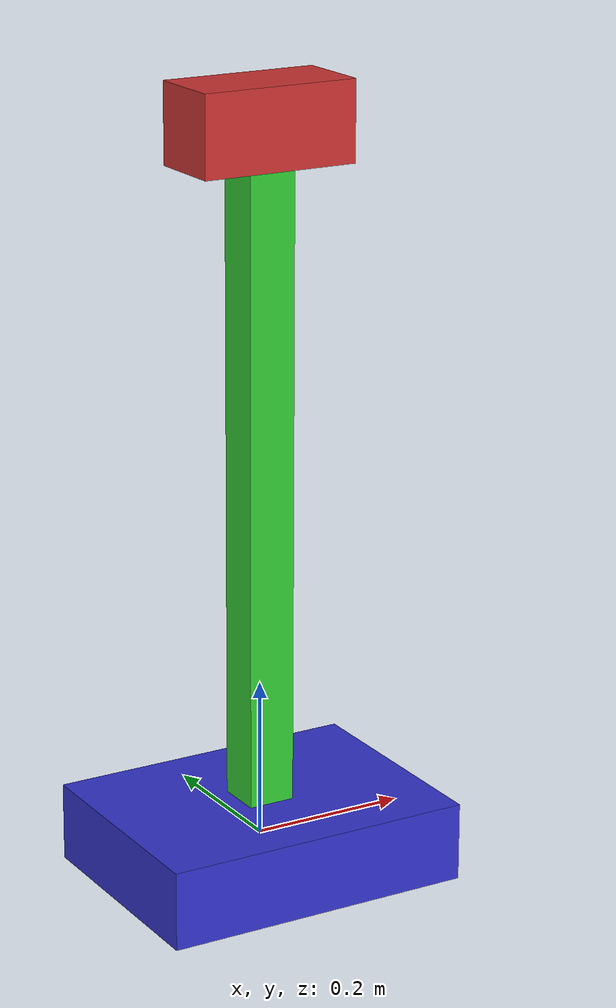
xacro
<?xml version="1.0"?>

<!--
  xacro/sensor_robot.xacro

  役割:
  - base_link, mast_link, sensor_link を持つ簡単なロボットモデルを定義する
  - sensor_height 引数で mast_link の高さを変更できるようにする
-->

<robot xmlns:xacro="http://www.ros.org/wiki/xacro" name="sensor_robot">

  <!-- 外部から変更できるxacro引数 -->
  <xacro:arg name="sensor_height" default="0.8"/>

  <!-- xacro引数を計算で使いやすいようにpropertyへ入れる -->
  <xacro:property name="sensor_height" value="$(arg sensor_height)"/>

  <!-- 定数 -->
  <xacro:property name="base_x" value="0.4"/>
  <xacro:property name="base_y" value="0.3"/>
  <xacro:property name="base_z" value="0.1"/>

  <xacro:property name="mast_x" value="0.06"/>
  <xacro:property name="mast_y" value="0.06"/>

  <xacro:property name="sensor_x" value="0.2"/>
  <xacro:property name="sensor_y" value="0.1"/>
  <xacro:property name="sensor_z" value="0.1"/>

  <!-- 共通部品を読み込む -->
  <xacro:include filename="$(find xacro_tf_practice)/xacro/common_parts.xacro"/>

  <!-- base_link: 土台 -->
  <xacro:box_link
    name="base_link"
    x="${base_x}"
    y="${base_y}"
    z="${base_z}"
    color="0.2 0.2 0.8 1.0"/>

  <!-- mast_link: 支柱 -->
  <xacro:box_link
    name="mast_link"
    x="${mast_x}"
    y="${mast_y}"
    z="${sensor_height}"
    color="0.2 0.8 0.2 1.0"/>

  <!-- sensor_link: センサー本体 -->
  <xacro:box_link
    name="sensor_link"
    x="${sensor_x}"
    y="${sensor_y}"
    z="${sensor_z}"
    color="0.8 0.2 0.2 1.0"/>

  <!-- base_link の上に mast_link を固定 -->
  <joint name="base_to_mast_joint" type="fixed">
    <parent link="base_link"/>
    <child link="mast_link"/>
    <origin
      xyz="0 0 ${base_z / 2.0 + sensor_height / 2.0}"
      rpy="0 0 0"/>
  </joint>

  <!-- mast_link の上に sensor_link を固定 -->
  <joint name="mast_to_sensor_joint" type="fixed">
    <parent link="mast_link"/>
    <child link="sensor_link"/>
    <origin
      xyz="0 0 ${sensor_height / 2.0 + sensor_z / 2.0}"
      rpy="0 0 0"/>
  </joint>

</robot>

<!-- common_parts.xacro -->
<!--
  xacro/common_parts.xacro

  役割:
  - URDFで何度も使う「箱型リンク」をxacroマクロとして定義する
  - sensor_robot.xacro から include して使う
-->

<robot xmlns:xacro="http://www.ros.org/wiki/xacro">

  <!--
    box_link:
    name  : link名
    x,y,z : 箱のサイズ
    color : RGBA文字列
  -->
  <xacro:macro name="box_link" params="name x y z color">
    <link name="${name}">
      <visual>
        <origin xyz="0 0 0" rpy="0 0 0"/>
        <geometry>
          <box size="${x} ${y} ${z}"/>
        </geometry>
        <material name="${name}_material">
          <color rgba="${color}"/>
        </material>
      </visual>

      <collision>
        <origin xyz="0 0 0" rpy="0 0 0"/>
        <geometry>
          <box size="${x} ${y} ${z}"/>
        </geometry>
      </collision>
    </link>
  </xacro:macro>

</robot>
